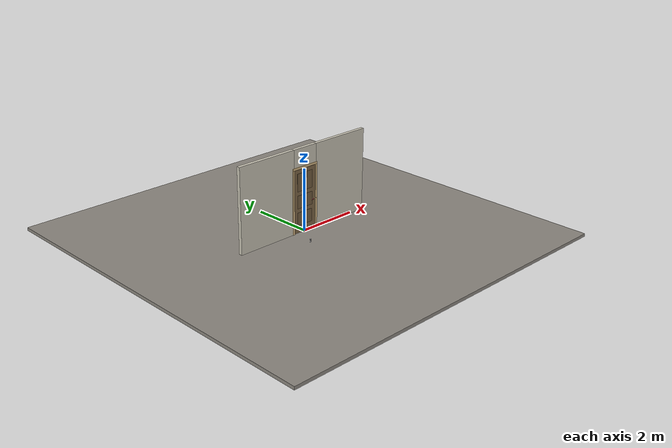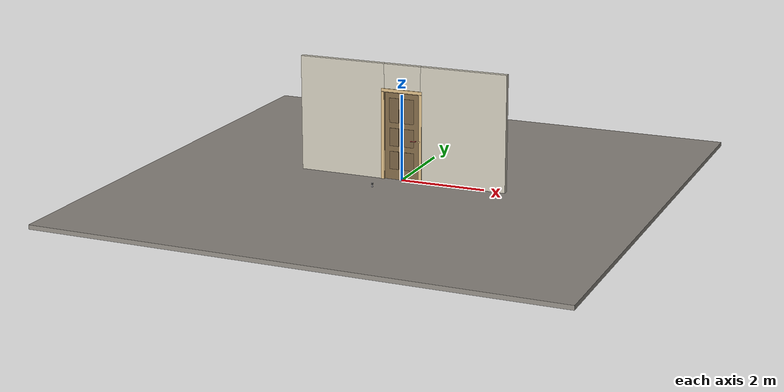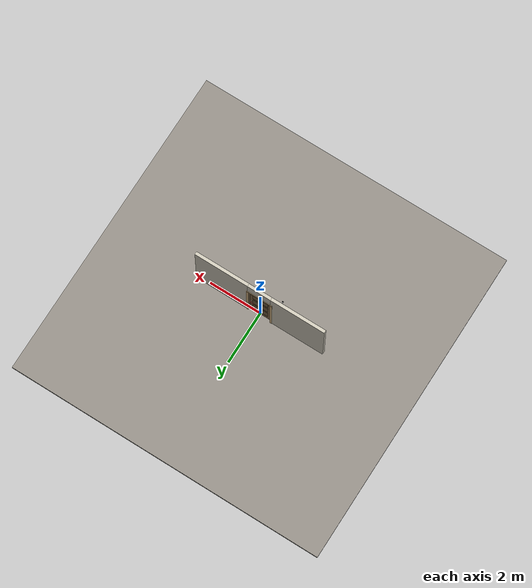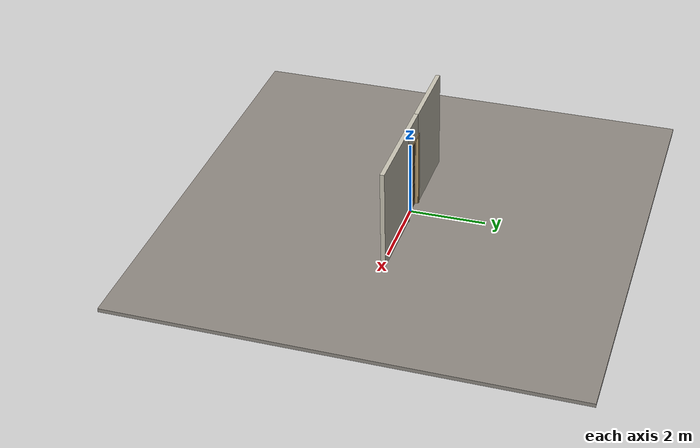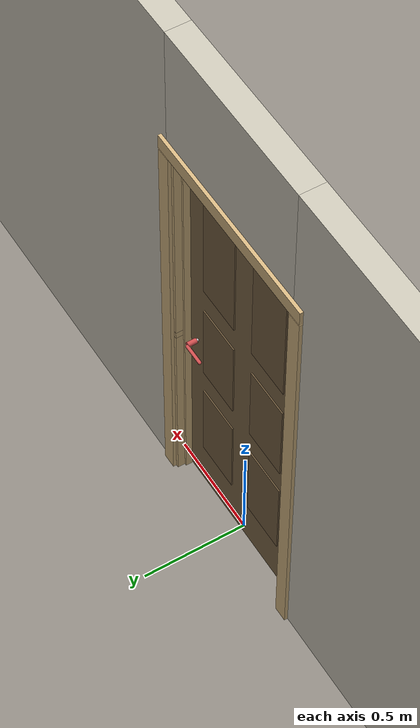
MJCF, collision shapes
<?xml version="1.0" ?>
<mujoco model="db0971_swing_single_full">
  <compiler angle="radian" meshdir="../../hardware" texturedir="../../textures" autolimits="true" inertiafromgeom="false"/>
  <option timestep="0.002" integrator="implicitfast" cone="elliptic" impratio="10" noslip_iterations="3">
    <flag multiccd="enable"/>
  </option>
  <size memory="16M"/>
  <default>
    <geom condim="4" solref="0.005 1" solimp="0.95 0.99 0.001"/>
    <joint solreflimit="0.005 1" solimplimit="0.95 0.99 0.001"/>
    <tendon solreflimit="0.005 1"/>
    <equality solref="0.002 1"/>
  </default>
  <visual>
    <headlight ambient="0.4 0.4 0.4" diffuse="0.7 0.7 0.7" specular="0.2 0.2 0.2"/>
    <quality shadowsize="4096"/>
    <map znear="0.01" zfar="60"/>
  </visual>
  <asset>
    <mesh name="hinge_9ae1f9b7de" file="hinge_9ae1f9b7de.obj"/>
    <mesh name="hinge_jamb_50e97ebc96" file="hinge_jamb_50e97ebc96.obj"/>
    <mesh name="lever_748f08efca" file="lever_748f08efca.obj"/>
    <material name="mat_floor" rgba="0.55 0.53 0.5 1" specular="0.2" shininess="0.15" reflectance="0"/>
    <material name="mat_wall" rgba="0.78 0.76 0.7 1" specular="0.2" shininess="0.1" reflectance="0"/>
    <material name="mat_leaf" rgba="0.481 0.39 0.264 1" specular="0.2" shininess="0.45" reflectance="0"/>
    <material name="mat_leaf_panel" rgba="0.443 0.359 0.243 1" specular="0.2" shininess="0.45" reflectance="0"/>
    <material name="mat_hinge" rgba="0.65 0.66 0.68 1" specular="0.74" shininess="0.5" reflectance="0.36"/>
    <material name="mat_op_chrome" rgba="0.9 0.9 0.92 1" specular="0.8" shininess="0.9" reflectance="0.4"/>
    <material name="mat_trim" rgba="0.85 0.66 0.3 1" specular="0.8" shininess="0.75" reflectance="0.4"/>
    <material name="mat_bolt" rgba="0.85 0.66 0.3 1" specular="0.8" shininess="0.75" reflectance="0.4"/>
    <material name="mat_frame" rgba="0.82 0.7 0.5 1" specular="0.2" shininess="0.45" reflectance="0"/>
    <material name="mat_bumper_stop" rgba="0.08 0.08 0.08 1" specular="0.2" shininess="0.1" reflectance="0"/>
    <material name="mat_stop_base" rgba="0.9 0.9 0.92 1" specular="0.8" shininess="0.9" reflectance="0.4"/>
    <texture name="skybox" type="skybox" builtin="gradient" rgb1="0.6 0.7 0.85" rgb2="0.9 0.92 0.95" width="256" height="256"/>
  </asset>
  <worldbody>
    <light name="sun" pos="1.5 -2.5 4" dir="-0.3 0.5 -0.8" directional="true" diffuse="0.8 0.8 0.8" specular="0.3 0.3 0.3" castshadow="true"/>
    <light name="fill" pos="-1.5 2.5 3" dir="0.3 -0.5 -0.7" directional="true" diffuse="0.35 0.35 0.4" castshadow="false"/>
    <camera name="robot_view" pos="0 -2.511687 1.734312" xyaxes="1 0 0 0 0.26963 0.962964" fovy="52"/>
    <camera name="far_view" pos="0 2.572687 1.734312" xyaxes="-1 0 0 0 -0.26963 0.962964" fovy="52"/>
    <camera name="iso" pos="1.932062 -2.104938 2.141063" xyaxes="0.741536 0.670913 0 -0.242917 0.268487 0.932151" fovy="46"/>
    <camera name="detail_handle" pos="0.4364 -0.875 1.245" xyaxes="0.97561 0.219512 0 -0.070934 0.315262 0.94635" fovy="38"/>
    <geom name="floor" type="box" size="6 6 0.05" pos="0 0 -0.05" material="mat_floor" group="0" contype="1" conaffinity="1" friction="0.8 0.005 0.0001" density="2400"/>
    <geom name="wall_left" type="box" size="1.0355 0.0575 1.35" pos="-1.4645 0.0305 1.35" material="mat_wall" group="0" contype="1" conaffinity="1" friction="0.6 0.005 0.0001" density="800"/>
    <geom name="wall_right" type="box" size="1.0205 0.0575 1.35" pos="1.4795 0.0305 1.35" material="mat_wall" group="0" contype="1" conaffinity="1" friction="0.6 0.005 0.0001" density="800"/>
    <geom name="wall_header" type="box" size="0.444 0.0575 0.303" pos="0.015 0.0305 2.397" material="mat_wall" group="0" contype="1" conaffinity="1" friction="0.6 0.005 0.0001" density="800"/>
    <geom name="hinge_0_jamb" type="mesh" mesh="hinge_jamb_50e97ebc96" pos="-0.407 -0.027 0.259" material="mat_hinge" group="1" contype="0" conaffinity="0" density="7850"/>
    <geom name="hinge_1_jamb" type="mesh" mesh="hinge_jamb_50e97ebc96" pos="-0.407 -0.027 1.025" material="mat_hinge" group="1" contype="0" conaffinity="0" density="7850"/>
    <geom name="hinge_2_jamb" type="mesh" mesh="hinge_jamb_50e97ebc96" pos="-0.407 -0.027 1.861" material="mat_hinge" group="1" contype="0" conaffinity="0" density="7850"/>
    <geom name="jamb_hinge" type="box" size="0.0095 0.0575 1.0225" pos="-0.4195 0.0305 1.0225" material="mat_frame" group="0" contype="1" conaffinity="1" friction="0.6 0.005 0.0001" density="400"/>
    <geom name="strike_965_wall_n" type="box" size="0.0245 0.040075 0.0167" pos="0.4345 0.047925 0.965" material="mat_frame" group="0" contype="1" conaffinity="1" friction="0.6 0.005 0.0001" density="400"/>
    <geom name="strike_965_wall_p" type="box" size="0.0245 0.008 0.0167" pos="0.4345 -0.01585 0.965" material="mat_frame" group="0" contype="1" conaffinity="1" friction="0.6 0.005 0.0001" density="400"/>
    <geom name="strike_965_ramp" type="box" size="0.0245 0.01649 0.0167" pos="0.439136 -0.028673 0.965" quat="0.977148 0 0 0.212558" material="mat_frame" group="0" contype="1" conaffinity="1" friction="0.12 0.005 0.0001" density="400"/>
    <geom name="strike_965_back" type="box" size="0.01615 0.00785 0.0167" pos="0.44285 0 0.965" material="mat_frame" group="0" contype="1" conaffinity="1" friction="0.6 0.005 0.0001" density="400"/>
    <geom name="jamb_strike_0" type="box" size="0.0245 0.0575 0.47415" pos="0.4345 0.0305 0.47415" material="mat_frame" group="0" contype="1" conaffinity="1" friction="0.6 0.005 0.0001" density="400"/>
    <geom name="jamb_strike_1" type="box" size="0.0245 0.0575 0.53165" pos="0.4345 0.0305 1.51335" material="mat_frame" group="0" contype="1" conaffinity="1" friction="0.6 0.005 0.0001" density="400"/>
    <geom name="jamb_head" type="box" size="0.444 0.0575 0.0095" pos="0.015 0.0305 2.0545" material="mat_frame" group="0" contype="1" conaffinity="1" friction="0.6 0.005 0.0001" density="400"/>
    <geom name="head_stud" type="box" size="0.444 0.0575 0.015" pos="0.015 0.0305 2.079" material="mat_wall" group="0" contype="1" conaffinity="1" friction="0.6 0.005 0.0001" density="500"/>
    <geom name="stop_hinge" type="box" size="0.0055 0.016 1.0225" pos="-0.4045 0.0365 1.0225" material="mat_frame" group="0" contype="1" conaffinity="1" friction="0.6 0.005 0.0001" density="400"/>
    <geom name="stop_strike" type="box" size="0.0055 0.016 1.0225" pos="0.4045 0.0365 1.0225" material="mat_frame" group="0" contype="1" conaffinity="1" friction="0.6 0.005 0.0001" density="400"/>
    <geom name="stop_head" type="box" size="0.41 0.016 0.0055" pos="0 0.0365 2.0395" material="mat_frame" group="0" contype="1" conaffinity="1" friction="0.6 0.005 0.0001" density="400"/>
    <geom name="casing_l_n" type="box" size="0.035 0.008 1.032" pos="-0.459 -0.035 1.0225" material="mat_frame" group="2" contype="0" conaffinity="0" density="400"/>
    <geom name="casing_r_n" type="box" size="0.035 0.008 1.032" pos="0.459 -0.035 1.0225" material="mat_frame" group="2" contype="0" conaffinity="0" density="400"/>
    <geom name="casing_h_n" type="box" size="0.494 0.008 0.035" pos="0 -0.035 2.094" material="mat_frame" group="2" contype="0" conaffinity="0" density="400"/>
    <geom name="casing_l_p" type="box" size="0.035 0.008 1.032" pos="-0.459 0.096 1.0225" material="mat_frame" group="2" contype="0" conaffinity="0" density="400"/>
    <geom name="casing_r_p" type="box" size="0.035 0.008 1.032" pos="0.459 0.096 1.0225" material="mat_frame" group="2" contype="0" conaffinity="0" density="400"/>
    <geom name="casing_h_p" type="box" size="0.494 0.008 0.035" pos="0 0.096 2.094" material="mat_frame" group="2" contype="0" conaffinity="0" density="400"/>
    <geom name="door_stop_base" type="cylinder" size="0.022 0.003" pos="-0.423 -0.71805 0.003" material="mat_stop_base" group="0" contype="1" conaffinity="1" friction="0.6 0.005 0.0001" density="7850"/>
    <geom name="door_stop_post" type="cylinder" size="0.012 0.0245" pos="-0.423 -0.71805 0.0305" material="mat_stop_base" group="0" contype="1" conaffinity="1" friction="0.6 0.005 0.0001" density="7850"/>
    <geom name="door_stop_bumper" type="cylinder" size="0.022 0.02" pos="-0.423 -0.71805 0.075" material="mat_bumper_stop" group="0" contype="1" conaffinity="1" friction="0.6 0.005 0.0001" density="1100"/>
    <site name="approach_point" pos="0 -1.5 0" quat="1 0 0 0" size="0.05" rgba="0.2 0.9 0.2 0.5" group="4"/>
    <site name="goal_point" pos="0 1.5 0" quat="1 0 0 0" size="0.05" rgba="0.2 0.9 0.2 0.5" group="4"/>
    <site name="door_plane_center" pos="0 0 1.0225" quat="1 0 0 0" size="0.02" rgba="0.2 0.9 0.2 0.5" group="4"/>
    <body name="leaf" pos="-0.41 0 0">
      <inertial pos="0.404715 -0.000283 1.025278" mass="27.191591" quat="-0.499609 0.500611 -0.499379 -0.5004" diaginertia="1.539081206 9.383235288 10.914780689"/>
      <joint name="leaf_hinge" type="hinge" axis="0 0 -1" pos="0.003 -0.027 0" limited="true" range="0 1.570796" damping="0.210326" frictionloss="0.214732" armature="0.02"/>
      <geom name="leaf_slab" type="box" size="0.4065 0.02 1.016" pos="0.4095 0 1.025" material="mat_leaf" group="0" contype="1" conaffinity="1" friction="0.35 0.005 0.0001" density="1"/>
      <geom name="leaf_panel_0_n" type="box" size="0.11575 0.003 0.209032" pos="0.22875 -0.023 0.461552" material="mat_leaf_panel" group="1" contype="0" conaffinity="0" density="1"/>
      <geom name="leaf_panel_0_p" type="box" size="0.11575 0.003 0.209032" pos="0.22875 0.023 0.461552" material="mat_leaf_panel" group="1" contype="0" conaffinity="0" density="1"/>
      <geom name="leaf_panel_1_n" type="box" size="0.11575 0.003 0.209032" pos="0.59025 -0.023 0.461552" material="mat_leaf_panel" group="1" contype="0" conaffinity="0" density="1"/>
      <geom name="leaf_panel_1_p" type="box" size="0.11575 0.003 0.209032" pos="0.59025 0.023 0.461552" material="mat_leaf_panel" group="1" contype="0" conaffinity="0" density="1"/>
      <geom name="leaf_panel_2_n" type="box" size="0.11575 0.003 0.209032" pos="0.22875 -0.023 1.009616" material="mat_leaf_panel" group="1" contype="0" conaffinity="0" density="1"/>
      <geom name="leaf_panel_2_p" type="box" size="0.11575 0.003 0.209032" pos="0.22875 0.023 1.009616" material="mat_leaf_panel" group="1" contype="0" conaffinity="0" density="1"/>
      <geom name="leaf_panel_3_n" type="box" size="0.11575 0.003 0.209032" pos="0.59025 -0.023 1.009616" material="mat_leaf_panel" group="1" contype="0" conaffinity="0" density="1"/>
      <geom name="leaf_panel_3_p" type="box" size="0.11575 0.003 0.209032" pos="0.59025 0.023 1.009616" material="mat_leaf_panel" group="1" contype="0" conaffinity="0" density="1"/>
      <geom name="leaf_panel_4_n" type="box" size="0.11575 0.003 0.285376" pos="0.22875 -0.023 1.634024" material="mat_leaf_panel" group="1" contype="0" conaffinity="0" density="1"/>
      <geom name="leaf_panel_4_p" type="box" size="0.11575 0.003 0.285376" pos="0.22875 0.023 1.634024" material="mat_leaf_panel" group="1" contype="0" conaffinity="0" density="1"/>
      <geom name="leaf_panel_5_n" type="box" size="0.11575 0.003 0.285376" pos="0.59025 -0.023 1.634024" material="mat_leaf_panel" group="1" contype="0" conaffinity="0" density="1"/>
      <geom name="leaf_panel_5_p" type="box" size="0.11575 0.003 0.285376" pos="0.59025 0.023 1.634024" material="mat_leaf_panel" group="1" contype="0" conaffinity="0" density="1"/>
      <geom name="hinge_0" type="mesh" mesh="hinge_9ae1f9b7de" pos="0.003 -0.027 0.259" material="mat_hinge" group="1" contype="0" conaffinity="0" density="7850"/>
      <geom name="hinge_1" type="mesh" mesh="hinge_9ae1f9b7de" pos="0.003 -0.027 1.025" material="mat_hinge" group="1" contype="0" conaffinity="0" density="7850"/>
      <geom name="hinge_2" type="mesh" mesh="hinge_9ae1f9b7de" pos="0.003 -0.027 1.861" material="mat_hinge" group="1" contype="0" conaffinity="0" density="7850"/>
      <geom name="leaf_latch_bolt_faceplate" type="box" size="0.0006 0.01235 0.0267" pos="0.8154 0 0.965" material="mat_bolt" group="1" contype="0" conaffinity="0" density="8500"/>
      <site name="leaf_edge_mid" pos="0.816 0 1.016" quat="1 0 0 0" size="0.02" rgba="0.2 0.9 0.2 0.5" group="4"/>
      <body name="leaf_handle" pos="0.756 0 0.965">
        <inertial pos="-0.024289 0 0" mass="0.844246" quat="0.707107 0 0 -0.707107" diaginertia="0.00118518 0.003037122 0.004085535"/>
        <joint name="leaf_handle_hinge" type="hinge" axis="0 -1 0" limited="true" range="0 0.87" damping="0.205085" frictionloss="0.04" stiffness="0.9" springref="-0.444444" armature="0.01"/>
        <geom name="leaf_handle_spindle" type="cylinder" size="0.006 0.028" pos="0 0 0" quat="0.707107 -0.707107 0 0" material="mat_op_chrome" group="1" contype="0" conaffinity="0" density="7850"/>
        <geom name="leaf_handle_lever_n" type="mesh" mesh="lever_748f08efca" pos="0 -0.02 0" quat="0.707107 0.707107 0 0" material="mat_op_chrome" group="1" contype="0" conaffinity="0" density="3000"/>
        <geom name="leaf_handle_lever_col_n" type="capsule" size="0.008 0.048" pos="-0.056 -0.075 0" quat="0.707107 0 -0.707107 0" material="mat_op_chrome" group="3" contype="1" conaffinity="1" rgba="0.8 0.3 0.3 0.25" friction="0.7 0.01 0.0001" density="3000"/>
        <geom name="leaf_handle_hub_col_n" type="cylinder" size="0.012 0.022" pos="0 -0.05 0" quat="0.707107 -0.707107 0 0" material="mat_op_chrome" group="3" contype="1" conaffinity="1" rgba="0.8 0.3 0.3 0.25" friction="0.6 0.005 0.0001" density="3000"/>
        <geom name="leaf_handle_lever_p" type="mesh" mesh="lever_748f08efca" pos="0 0.02 0" quat="-0.707107 0.707107 0 0" material="mat_op_chrome" group="1" contype="0" conaffinity="0" density="3000"/>
        <geom name="leaf_handle_lever_col_p" type="capsule" size="0.008 0.048" pos="-0.056 0.075 0" quat="0.707107 0 -0.707107 0" material="mat_op_chrome" group="3" contype="1" conaffinity="1" rgba="0.8 0.3 0.3 0.25" friction="0.7 0.01 0.0001" density="3000"/>
        <geom name="leaf_handle_hub_col_p" type="cylinder" size="0.012 0.022" pos="0 0.05 0" quat="0.707107 -0.707107 0 0" material="mat_op_chrome" group="3" contype="1" conaffinity="1" rgba="0.8 0.3 0.3 0.25" friction="0.6 0.005 0.0001" density="3000"/>
        <site name="leaf_handle_grip_n" pos="-0.0896 -0.075 0" quat="1 0 0 0" size="0.012" rgba="0.2 0.9 0.2 0.5" group="4"/>
        <site name="leaf_handle_grip_p" pos="-0.0896 0.075 0" quat="1 0 0 0" size="0.012" rgba="0.2 0.9 0.2 0.5" group="4"/>
      </body>
      <body name="leaf_latch_bolt" pos="0.816 0 0.965">
        <inertial pos="-0.00865 0 0" mass="0.041419" quat="0.92388 -0.382683 0 0" diaginertia="0.000000798 0.000005598 0.000005598"/>
        <joint name="leaf_latch_bolt_slide" type="slide" axis="-1 0 0" limited="true" range="0 0.0127" damping="2" frictionloss="0.3" stiffness="300" springref="-0.008333" armature="0.1"/>
        <geom name="leaf_latch_bolt_capsule" type="capsule" size="0.00635 0.015" pos="-0.00865 0 0" quat="0.707107 0 0.707107 0" material="mat_bolt" group="0" contype="1" conaffinity="1" friction="0.2 0.005 0.0001" density="8500"/>
      </body>
    </body>
  </worldbody>
  <tendon>
    <fixed name="leaf_latch_bolt_coupling" limited="true" range="0 10">
      <joint joint="leaf_latch_bolt_slide" coef="1"/>
      <joint joint="leaf_handle_hinge" coef="-0.016076"/>
    </fixed>
  </tendon>
  <sensor>
    <jointpos name="leaf_hinge_pos" joint="leaf_hinge"/>
    <jointvel name="leaf_hinge_vel" joint="leaf_hinge"/>
    <jointpos name="leaf_handle_hinge_pos" joint="leaf_handle_hinge"/>
    <jointvel name="leaf_handle_hinge_vel" joint="leaf_handle_hinge"/>
    <jointpos name="leaf_latch_bolt_slide_pos" joint="leaf_latch_bolt_slide"/>
    <jointvel name="leaf_latch_bolt_slide_vel" joint="leaf_latch_bolt_slide"/>
  </sensor>
</mujoco>
